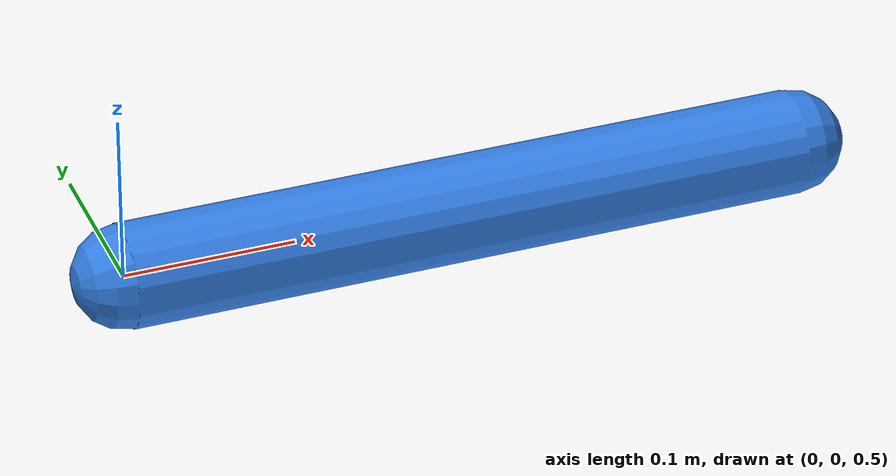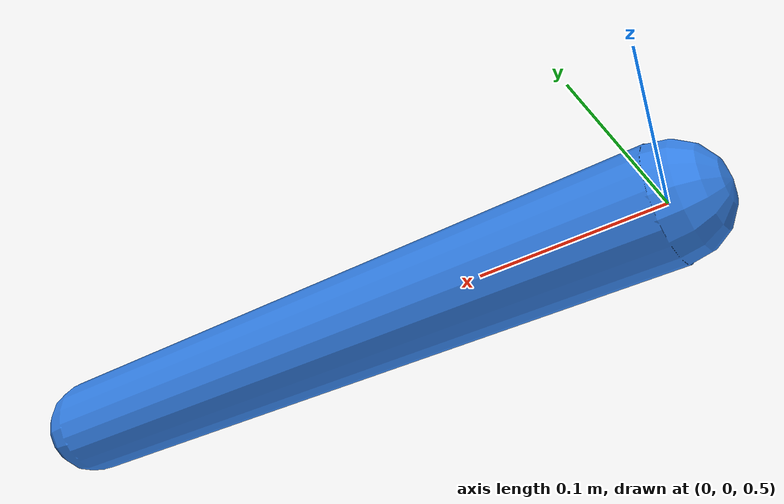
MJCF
<mujoco model="pd_single_joint">
  <compiler angle="radian"/>
  <!-- No gravity or passive damping: isolate the learner's PD feedback. -->
  <option timestep="0.002" gravity="0 0 0"/>
  <worldbody>
    <body name="arm" pos="0 0 0.5">
      <joint name="hinge" type="hinge" axis="0 0 1"
             damping="0" frictionloss="0" stiffness="0" limited="false"/>
      <geom name="link" type="capsule" fromto="0 0 0 0.4 0 0"
            size="0.03" mass="1" rgba="0.2 0.5 0.9 1"/>
    </body>
  </worldbody>
  <actuator>
    <!-- Unit gear + direct hinge motor: ctrl equals joint torque in N*m. -->
    <motor name="torque_motor" joint="hinge" gear="1"
           ctrllimited="false" forcelimited="false"/>
  </actuator>
</mujoco>
